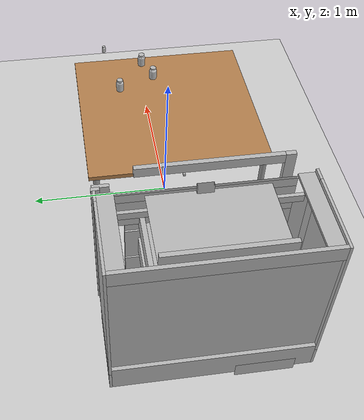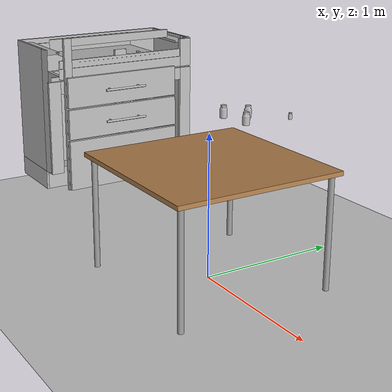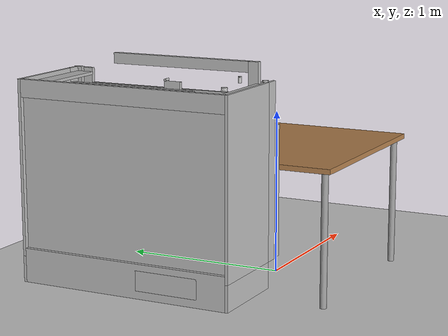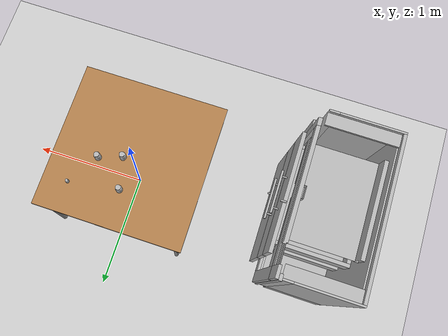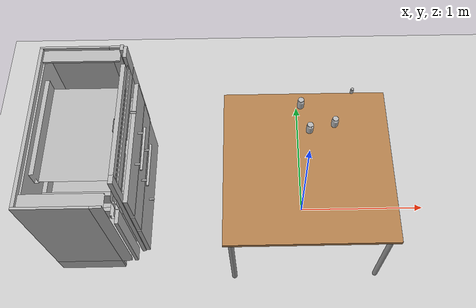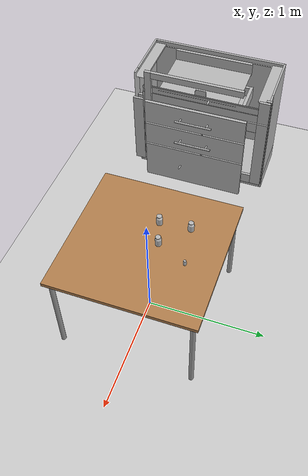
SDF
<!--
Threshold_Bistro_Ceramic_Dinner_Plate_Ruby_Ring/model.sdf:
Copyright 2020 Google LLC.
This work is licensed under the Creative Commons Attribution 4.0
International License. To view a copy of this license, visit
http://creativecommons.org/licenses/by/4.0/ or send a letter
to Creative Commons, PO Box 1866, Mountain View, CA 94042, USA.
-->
<sdf version="1.7">
 <world name="default">
  <gravity>0 0 -9.8</gravity>
  <magnetic_field>6e-06 2.3e-05 -4.2e-05</magnetic_field>
  <atmosphere type="adiabatic"/>
  <max_contacts>100</max_contacts>
  <physics type="ode">
   <max_step_size>0.001</max_step_size>
   <real_time_factor>1</real_time_factor>
   <real_time_update_rate>1000</real_time_update_rate>
   <constraints>
    <contact_max_correcting_vel>1</contact_max_correcting_vel>
    <contact_surface_layer>0.001</contact_surface_layer>
   </constraints>
  </physics>
  <scene><ambient>0.4 0.4 0.4 1</ambient><background>0.7 0.7 0.7 1</background><shadows>1</shadows></scene>
  <spherical_coordinates>
   <surface_model>EARTH_WGS84</surface_model>
   <latitude_deg>0</latitude_deg>
   <longitude_deg>0</longitude_deg>
   <elevation>0</elevation>
   <heading_deg>0</heading_deg>
  </spherical_coordinates>
  <include><uri>model://ground_plane</uri></include>
  <include><uri>model://sun</uri></include>
  <include><uri>model://Table</uri><name>table</name><static>1</static></include>
  <include>
   <uri>model://cabinet_1076</uri>
   <name>cabinet</name>
   <name>cabinet</name>
   <pose>-1.5 0.0 0.866007 0 0 -3.1416</pose>
   <scale>1 1 1</scale>
   <static>1</static>
  </include>
  <include>
   <uri>model://Threshold_Bistro_Ceramic_Dinner_Plate_Ruby_Ring</uri>
   <name>ruby_ring_dinner_plate</name>
   <pose>-0.05062480262588598 0.33132802893975477 1.046649 0.0 0.0 0.0</pose>
  </include>
  <include>
   <uri>model://Bradshaw_International_11642_7_Qt_MP_Plastic_Bowl</uri>
   <name>red_plastic_bowl</name>
   <pose>0.3043037606832991 0.4001527975266209 1.1072520000000001 0.0 0.0 0.0</pose>
  </include>
  <include>
   <uri>model://FemDophilus</uri>
   <name>white_and_pink_box</name>
   <pose>-0.002542712392415436 0.10606251618109241 1.087291 0.0 0.0 0.0</pose>
  </include>
  <include>
   <uri>model://CoQ10</uri>
   <name>grey_medication_bottle</name>
   <pose>0.170574075928405 0.1588620471995218 1.0721995 0.0 0.0 0.0</pose>
  </include>
 </world>
</sdf>

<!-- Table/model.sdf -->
<sdf version="1.5">
  <model name="Table">
    <static>true</static>
    <link name="link">
      <gravity>1</gravity>
      <inertial>
        <mass>10.0</mass>
      </inertial>
      <collision name="surface">
        <pose>0 0 0.8 0 0 0</pose>
        <geometry>
          <box>
            <size>1.2 1.2 0.03</size>
          </box>
        </geometry>
        <surface>
          <friction>
            <ode>
              <mu>0.8</mu>
              <mu2>0.6</mu2>
            </ode>
          </friction>
        </surface>
      </collision>
      <visual name="visual1">
        <pose>0 0 0.8 0 0 0</pose>
        <geometry>
          <box>
            <size>1.2 1.2 0.03</size>
          </box>
        </geometry>
        <material>
          <diffuse>1.0 1.0 1.0</diffuse>
          <script>
            <uri>file://media/materials/scripts/gazebo.material</uri>
            <name>Gazebo/Wood</name>
          </script>
          <!-- PBR for Ignition, material scripts for gazebo classic-->
          <pbr>
            <metal>
              <albedo_map>model://Table/Table_Diffuse.jpg</albedo_map>
            </metal>
          </pbr>
        </material>
      </visual>
      <collision name="front_left_leg">
        <pose>0.55 0.55 0.4 0 0 0</pose>
        <geometry>
          <cylinder>
            <radius>0.02</radius>
            <length>0.8</length>
          </cylinder>
        </geometry>
      </collision>
      <visual name="front_left_leg_visual">
        <pose>0.55 0.55 0.4 0 0 0</pose>
        <geometry>
          <cylinder>
            <radius>0.02</radius>
            <length>0.8</length>
          </cylinder>
        </geometry>
        <material>
          <diffuse>0.5 0.5 0.5</diffuse>
          <script>
            <uri>file://media/materials/scripts/gazebo.material</uri>
            <name>Gazebo/Grey</name>
          </script>
        </material>
      </visual>
      <collision name="front_right_leg">
        <pose>0.55 -0.55 0.4 0 0 0</pose>
        <geometry>
          <cylinder>
            <radius>0.02</radius>
            <length>0.8</length>
          </cylinder>
        </geometry>
      </collision>
      <visual name="front_right_leg_visual">
        <pose>0.55 -0.55 0.4 0 0 0</pose>
        <geometry>
          <cylinder>
            <radius>0.02</radius>
            <length>0.8</length>
          </cylinder>
        </geometry>
        <material>
          <diffuse>0.5 0.5 0.5</diffuse>
          <script>
            <uri>file://media/materials/scripts/gazebo.material</uri>
            <name>Gazebo/Grey</name>
          </script>
        </material>
      </visual>
      <collision name="back_right_leg">
        <pose>-0.55 -0.55 0.4 0 0 0</pose>
        <geometry>
          <cylinder>
            <radius>0.02</radius>
            <length>0.8</length>
          </cylinder>
        </geometry>
      </collision>
      <visual name="back_right_leg_visual">
        <pose>-0.55 -0.55 0.4 0 0 0</pose>
        <geometry>
          <cylinder>
            <radius>0.02</radius>
            <length>0.8</length>
          </cylinder>
        </geometry>
        <material>
          <diffuse>0.5 0.5 0.5</diffuse>
          <script>
            <uri>file://media/materials/scripts/gazebo.material</uri>
            <name>Gazebo/Grey</name>
          </script>
        </material>
      </visual>
      <collision name="back_left_leg">
        <pose>-0.55 0.55 0.4 0 0 0</pose>
        <geometry>
          <cylinder>
            <radius>0.02</radius>
            <length>0.8</length>
          </cylinder>
        </geometry>
      </collision>
      <visual name="back_left_leg_visual">
        <pose>-0.55 0.55 0.4 0 0 0</pose>
        <geometry>
          <cylinder>
            <radius>0.02</radius>
            <length>0.8</length>
          </cylinder>
        </geometry>
        <material>
          <diffuse>0.5 0.5 0.5</diffuse>
          <script>
            <uri>file://media/materials/scripts/gazebo.material</uri>
            <name>Gazebo/Grey</name>
          </script>
        </material>
      </visual>
    </link>
  </model>
</sdf>

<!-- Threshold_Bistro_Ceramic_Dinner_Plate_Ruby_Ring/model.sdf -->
<sdf version="1.6">
  <model name="Threshold_Bistro_Ceramic_Dinner_Plate_Ruby_Ring">
    <link name="link_0">
      <visual name="visual">
        <geometry>
          <mesh>
            <uri>meshes/model.obj</uri>
          </mesh>
        </geometry>
      </visual>
      <collision name="collision_0">
        <geometry>
          <mesh>
            <uri>meshes/model.obj</uri>
          </mesh>
        </geometry>
      </collision>
    </link>
  </model>
</sdf>

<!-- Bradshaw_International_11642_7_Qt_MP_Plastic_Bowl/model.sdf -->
<sdf version="1.6">
  <model name="Bradshaw_International_11642_7_Qt_MP_Plastic_Bowl">
    <link name="link_0">
      <visual name="visual">
        <geometry>
          <mesh>
            <uri>meshes/model.obj</uri>
            <scale>0.5 0.5 0.5</scale>
          </mesh>
        </geometry>
      </visual>
      <collision name="collision_0">
        <geometry>
          <mesh>
            <uri>meshes/model.obj</uri>
            <scale>0.5 0.5 0.5</scale>
          </mesh>
        </geometry>
      </collision>
    </link>
  </model>
</sdf>

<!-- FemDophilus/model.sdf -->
<sdf version="1.6">
  <model name="FemDophilus">
    <link name="link_0">
      <visual name="visual">
        <geometry>
          <mesh>
            <uri>meshes/model.obj</uri>
          </mesh>
        </geometry>
      </visual>
      <collision name="collision_0">
        <geometry>
          <mesh>
            <uri>meshes/model.obj</uri>
          </mesh>
        </geometry>
      </collision>
    </link>
  </model>
</sdf>

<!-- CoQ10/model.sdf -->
<sdf version="1.6">
  <model name="CoQ10">
    <link name="link_0">
      <visual name="visual">
        <geometry>
          <mesh>
            <uri>meshes/model.obj</uri>
          </mesh>
        </geometry>
      </visual>
      <collision name="collision_0">
        <geometry>
          <mesh>
            <uri>meshes/model.obj</uri>
          </mesh>
        </geometry>
      </collision>
    </link>
  </model>
</sdf>
